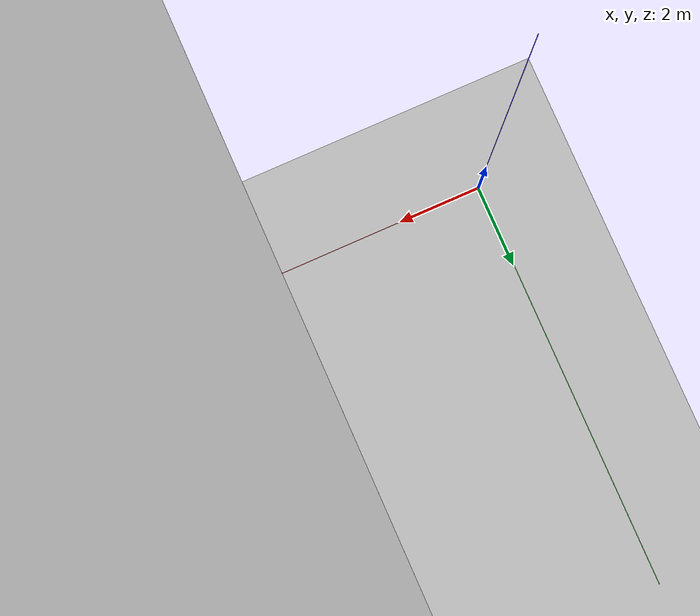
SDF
<sdf version="1.9">
 <world name="crop">
  <physics name="1ms" type="ignore">
   <max_step_size>0.001</max_step_size>
   <real_time_factor>1.0</real_time_factor>
  </physics>
  <plugin filename="gz-sim-physics-system" name="gz::sim::systems::Physics"/>
  <plugin filename="gz-sim-sensors-system" name="gz::sim::systems::Sensors">
   <render_engine>ogre2</render_engine>
  </plugin>
  <plugin filename="gz-sim-imu-system" name="gz::sim::systems::Imu"/>
  <plugin filename="gz-sim-navsat-system" name="gz::sim::systems::NavSat"/>
  <plugin filename="gz-sim-user-commands-system" name="gz::sim::systems::UserCommands"/>
  <plugin filename="gz-sim-scene-broadcaster-system" name="gz::sim::systems::SceneBroadcaster"/>
  <wind><linear_velocity>3.06 3.06 0</linear_velocity></wind>
  <scene><ambient>1 1 1 1</ambient><background>1 1 1 1</background><shadows>1</shadows></scene>
  <spherical_coordinates>
   <latitude_deg>-7.762234523256719</latitude_deg>
   <longitude_deg>-79.318536462156</longitude_deg>
   <elevation>97</elevation>
   <heading_deg>0</heading_deg>
   <surface_model>EARTH_WGS84</surface_model>
  </spherical_coordinates>
  <gravity>0 0 -9.81</gravity>
  <magnetic_field>6e-06 2.3e-05 -4.2e-05</magnetic_field>
  <atmosphere type="adiabatic"/>
  <light type="directional" name="sun">
   <pose>0 0 10 0 0 0</pose>
   <diffuse>0.8 0.8 0.8 1</diffuse>
   <specular>0.8 0.8 0.8 1</specular>
   <attenuation>
    <range>1000</range>
    <constant>0.9</constant>
    <linear>0.01</linear>
    <quadratic>0.001</quadratic>
   </attenuation>
   <direction>-0.5 0.1 -0.9</direction>
  </light>
  <audio><device>default</device></audio>
  <model name="axes">
   <static>1</static>
   <link name="link">
    <visual name="r">
     <cast_shadows>0</cast_shadows>
     <pose>5 0 0 0 0 0</pose>
     <geometry><box><size>10 0.01 0.01</size></box></geometry>
     <material>
      <ambient>1 0 0 0.8</ambient>
      <diffuse>1 0 0 0.8</diffuse>
      <emissive>1 0 0 0.8</emissive>
      <specular>0.5 0.5 0.5 0.8</specular>
     </material>
    </visual>
    <visual name="g">
     <cast_shadows>0</cast_shadows>
     <pose>0 5 0.1 0 0 0</pose>
     <geometry><box><size>0.01 10 0.01</size></box></geometry>
     <material>
      <ambient>0 1 0 0.8</ambient>
      <diffuse>0 1 0 0.8</diffuse>
      <emissive>0 1 0 0.8</emissive>
      <specular>0.5 0.5 0.5 0.8</specular>
     </material>
    </visual>
    <visual name="b">
     <cast_shadows>0</cast_shadows>
     <pose>0 0 5.1 0 0 0</pose>
     <geometry><box><size>0.01 0.01 10</size></box></geometry>
     <material>
      <ambient>0 0 1 0.8</ambient>
      <diffuse>0 0 1 0.8</diffuse>
      <emissive>0 0 1 0.8</emissive>
      <specular>0.5 0.5 0.5 0.8</specular>
     </material>
    </visual>
    <sensor name="navsat_sensor" type="navsat"><always_on>1</always_on><update_rate>1</update_rate></sensor>
   </link>
  </model>
  <include><uri>model://grass</uri><pose degrees="true">150 0 0 0 0 360</pose></include>
  <include><uri>model://sugarcane_field</uri><pose degrees="true">55 0 0 90 0 90</pose></include>
 </world>
</sdf>

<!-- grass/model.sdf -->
<sdf version="1.9">
  <model name="grass">
    <static>true</static>
    <link name="link">
      <collision name="collision">
        <geometry>
          <plane>
            <normal>0 0 1</normal>
          </plane>
        </geometry>
      </collision>
      <visual name="plane">
        <pose>0 0 0. 0 0 0</pose>
        <cast_shadows>false</cast_shadows>
        <geometry>
          <plane>
            <normal>0 0 1</normal>
            <size>400 400</size>        <!-- Plano de 400x400 metros para la tierra -->
          </plane>
        </geometry>
        <material>
          <ambient>0.8 0.8 0.8 1</ambient>
          <diffuse>0.8 0.8 0.8 1</diffuse>
          <specular>0.05 0.05 0.05 1</specular>
          <pbr>
            <metal>
              <albedo_map>materials/textures/soil.png</albedo_map>
            </metal>
          </pbr>
        </material>
      </visual>
    </link>
  </model>
</sdf>

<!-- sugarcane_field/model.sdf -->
<sdf version="1.9">
  <model name="sugarcane_field">
    <static>true</static>
    <link name="field">
      <visual name="visual">
        <geometry>
          <mesh>
            <uri>model://sugarcane_field/meshes/crop.obj</uri>
          </mesh>
        </geometry>
      </visual>
      <collision name="collision">
        <geometry>
          <mesh>
            <uri>model://sugarcane_field/meshes/crop.obj</uri>
          </mesh>
        </geometry>
      </collision>
    </link>
  </model>
</sdf>
